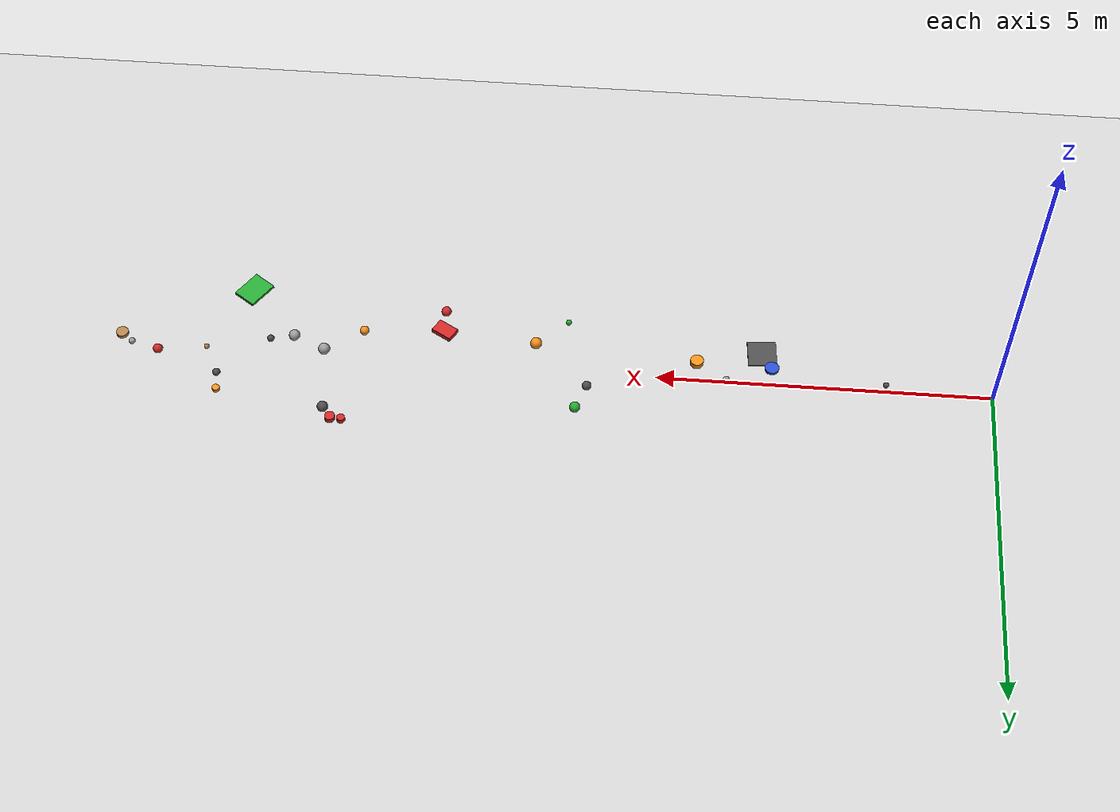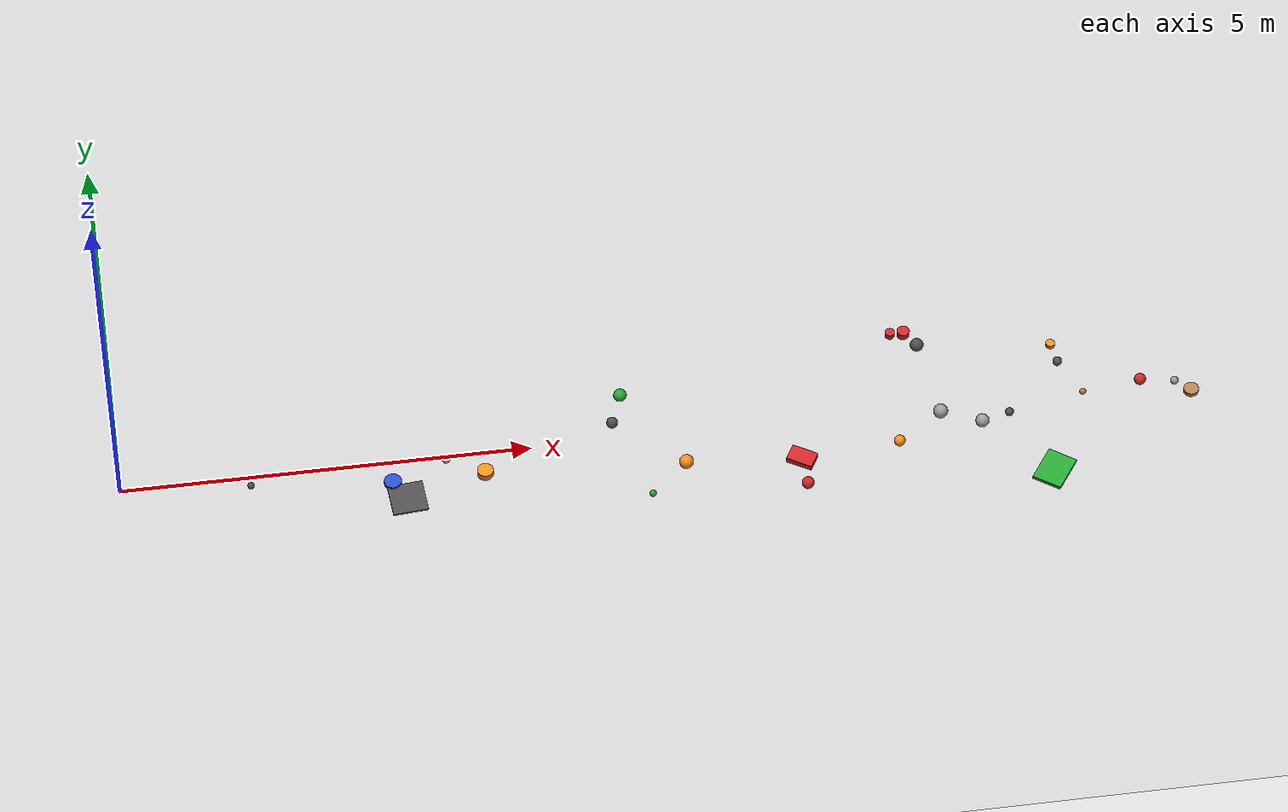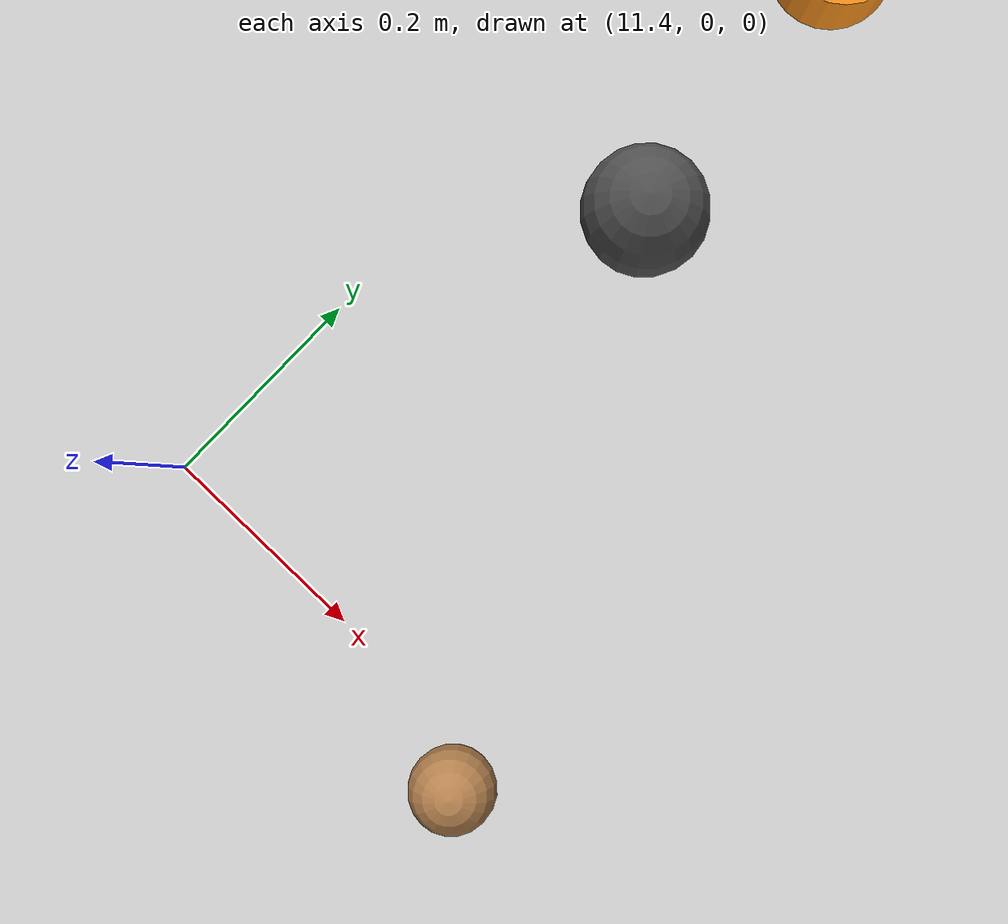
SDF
<?xml version="1.0" ?>
<!-- 由 omni_world.py 自动生成: scene=random seed=6 -->
<sdf version="1.5">
  <world name="random">
    <physics type="ode">
      <type>world</type>
      <max_step_size>0.001</max_step_size>
      <real_time_update_rate>1000</real_time_update_rate>
      <iters>500</iters>
    </physics>
    <include><uri>model://sun</uri></include>
    <include><uri>model://ground_plane</uri></include>
    <model name="r_sph_0">
      <static>true</static>
      <pose>11.774 -0.036 0.019 0 0 0</pose>
      <link name="link">
        <collision name="collision">
          <geometry><sphere><radius>0.040</radius></sphere></geometry>
          <surface><friction><ode><mu>1.0</mu><mu2>1.0</mu2></ode></friction></surface>
        </collision>
        <visual name="visual">
          <geometry><sphere><radius>0.040</radius></sphere></geometry>
          <material><script><uri>file://media/materials/scripts/gazebo.material</uri>
            <name>Gazebo/Wood</name></script></material>
        </visual>
      </link>
    </model>
    <model name="r_sph_1">
      <static>true</static>
      <pose>6.165 0.648 0.020 0 0 0</pose>
      <link name="link">
        <collision name="collision">
          <geometry><sphere><radius>0.080</radius></sphere></geometry>
          <surface><friction><ode><mu>1.0</mu><mu2>1.0</mu2></ode></friction></surface>
        </collision>
        <visual name="visual">
          <geometry><sphere><radius>0.080</radius></sphere></geometry>
          <material><script><uri>file://media/materials/scripts/gazebo.material</uri>
            <name>Gazebo/Green</name></script></material>
        </visual>
      </link>
    </model>
    <model name="r_sph_2">
      <static>true</static>
      <pose>8.241 -0.974 0.030 0 0 0</pose>
      <link name="link">
        <collision name="collision">
          <geometry><sphere><radius>0.075</radius></sphere></geometry>
          <surface><friction><ode><mu>1.0</mu><mu2>1.0</mu2></ode></friction></surface>
        </collision>
        <visual name="visual">
          <geometry><sphere><radius>0.075</radius></sphere></geometry>
          <material><script><uri>file://media/materials/scripts/gazebo.material</uri>
            <name>Gazebo/Red</name></script></material>
        </visual>
      </link>
    </model>
    <model name="r_sph_3">
      <static>true</static>
      <pose>11.542 0.446 0.040 0 0 0</pose>
      <link name="link">
        <collision name="collision">
          <geometry><sphere><radius>0.057</radius></sphere></geometry>
          <surface><friction><ode><mu>1.0</mu><mu2>1.0</mu2></ode></friction></surface>
        </collision>
        <visual name="visual">
          <geometry><sphere><radius>0.057</radius></sphere></geometry>
          <material><script><uri>file://media/materials/scripts/gazebo.material</uri>
            <name>Gazebo/DarkGrey</name></script></material>
        </visual>
      </link>
    </model>
    <model name="r_cyl_4">
      <static>true</static>
      <pose>11.504 0.731 0.026 0 0 0</pose>
      <link name="link">
        <collision name="collision">
          <geometry><cylinder><radius>0.057</radius><length>0.051</length></cylinder></geometry>
          <surface><friction><ode><mu>1.0</mu><mu2>1.0</mu2></ode></friction></surface>
        </collision>
        <visual name="visual">
          <geometry><cylinder><radius>0.057</radius><length>0.051</length></cylinder></geometry>
          <material><script><uri>file://media/materials/scripts/gazebo.material</uri>
            <name>Gazebo/Orange</name></script></material>
        </visual>
      </link>
    </model>
    <model name="r_sph_5">
      <static>true</static>
      <pose>9.436 -0.501 0.043 0 0 0</pose>
      <link name="link">
        <collision name="collision">
          <geometry><sphere><radius>0.069</radius></sphere></geometry>
          <surface><friction><ode><mu>1.0</mu><mu2>1.0</mu2></ode></friction></surface>
        </collision>
        <visual name="visual">
          <geometry><sphere><radius>0.069</radius></sphere></geometry>
          <material><script><uri>file://media/materials/scripts/gazebo.material</uri>
            <name>Gazebo/Orange</name></script></material>
        </visual>
      </link>
    </model>
    <model name="r_sph_6">
      <static>true</static>
      <pose>12.908 -0.032 0.039 0 0 0</pose>
      <link name="link">
        <collision name="collision">
          <geometry><sphere><radius>0.050</radius></sphere></geometry>
          <surface><friction><ode><mu>1.0</mu><mu2>1.0</mu2></ode></friction></surface>
        </collision>
        <visual name="visual">
          <geometry><sphere><radius>0.050</radius></sphere></geometry>
          <material><script><uri>file://media/materials/scripts/gazebo.material</uri>
            <name>Gazebo/Grey</name></script></material>
        </visual>
      </link>
    </model>
    <model name="r_sph_7">
      <static>true</static>
      <pose>6.017 0.244 0.021 0 0 0</pose>
      <link name="link">
        <collision name="collision">
          <geometry><sphere><radius>0.069</radius></sphere></geometry>
          <surface><friction><ode><mu>1.0</mu><mu2>1.0</mu2></ode></friction></surface>
        </collision>
        <visual name="visual">
          <geometry><sphere><radius>0.069</radius></sphere></geometry>
          <material><script><uri>file://media/materials/scripts/gazebo.material</uri>
            <name>Gazebo/DarkGrey</name></script></material>
        </visual>
      </link>
    </model>
    <model name="r_sph_8">
      <static>true</static>
      <pose>12.501 0.061 0.014 0 0 0</pose>
      <link name="link">
        <collision name="collision">
          <geometry><sphere><radius>0.073</radius></sphere></geometry>
          <surface><friction><ode><mu>1.0</mu><mu2>1.0</mu2></ode></friction></surface>
        </collision>
        <visual name="visual">
          <geometry><sphere><radius>0.073</radius></sphere></geometry>
          <material><script><uri>file://media/materials/scripts/gazebo.material</uri>
            <name>Gazebo/Red</name></script></material>
        </visual>
      </link>
    </model>
    <model name="r_sph_9">
      <static>true</static>
      <pose>3.953 -0.039 0.015 0 0 0</pose>
      <link name="link">
        <collision name="collision">
          <geometry><sphere><radius>0.050</radius></sphere></geometry>
          <surface><friction><ode><mu>1.0</mu><mu2>1.0</mu2></ode></friction></surface>
        </collision>
        <visual name="visual">
          <geometry><sphere><radius>0.050</radius></sphere></geometry>
          <material><script><uri>file://media/materials/scripts/gazebo.material</uri>
            <name>Gazebo/Grey</name></script></material>
        </visual>
      </link>
    </model>
    <model name="r_box_10">
      <static>true</static>
      <pose>11.226 -1.159 0.022 0.0000 0.0000 0.9617</pose>
      <link name="link">
        <collision name="collision">
          <geometry><box><size>0.467 0.367 0.043</size></box></geometry>
          <surface><friction><ode><mu>1.0</mu><mu2>1.0</mu2></ode></friction></surface>
        </collision>
        <visual name="visual">
          <geometry><box><size>0.467 0.367 0.043</size></box></geometry>
          <material><script><uri>file://media/materials/scripts/gazebo.material</uri>
            <name>Gazebo/Green</name></script></material>
        </visual>
      </link>
    </model>
    <model name="r_sph_11">
      <static>true</static>
      <pose>6.365 -0.896 0.045 0 0 0</pose>
      <link name="link">
        <collision name="collision">
          <geometry><sphere><radius>0.043</radius></sphere></geometry>
          <surface><friction><ode><mu>1.0</mu><mu2>1.0</mu2></ode></friction></surface>
        </collision>
        <visual name="visual">
          <geometry><sphere><radius>0.043</radius></sphere></geometry>
          <material><script><uri>file://media/materials/scripts/gazebo.material</uri>
            <name>Gazebo/Green</name></script></material>
        </visual>
      </link>
    </model>
    <model name="r_sph_12">
      <static>true</static>
      <pose>10.829 -0.245 0.044 0 0 0</pose>
      <link name="link">
        <collision name="collision">
          <geometry><sphere><radius>0.052</radius></sphere></geometry>
          <surface><friction><ode><mu>1.0</mu><mu2>1.0</mu2></ode></friction></surface>
        </collision>
        <visual name="visual">
          <geometry><sphere><radius>0.052</radius></sphere></geometry>
          <material><script><uri>file://media/materials/scripts/gazebo.material</uri>
            <name>Gazebo/DarkGrey</name></script></material>
        </visual>
      </link>
    </model>
    <model name="r_sph_13">
      <static>true</static>
      <pose>9.878 0.935 0.026 0 0 0</pose>
      <link name="link">
        <collision name="collision">
          <geometry><sphere><radius>0.082</radius></sphere></geometry>
          <surface><friction><ode><mu>1.0</mu><mu2>1.0</mu2></ode></friction></surface>
        </collision>
        <visual name="visual">
          <geometry><sphere><radius>0.082</radius></sphere></geometry>
          <material><script><uri>file://media/materials/scripts/gazebo.material</uri>
            <name>Gazebo/DarkGrey</name></script></material>
        </visual>
      </link>
    </model>
    <model name="r_sph_14">
      <static>true</static>
      <pose>6.830 -0.472 0.039 0 0 0</pose>
      <link name="link">
        <collision name="collision">
          <geometry><sphere><radius>0.087</radius></sphere></geometry>
          <surface><friction><ode><mu>1.0</mu><mu2>1.0</mu2></ode></friction></surface>
        </collision>
        <visual name="visual">
          <geometry><sphere><radius>0.087</radius></sphere></geometry>
          <material><script><uri>file://media/materials/scripts/gazebo.material</uri>
            <name>Gazebo/Orange</name></script></material>
        </visual>
      </link>
    </model>
    <model name="r_sph_15">
      <static>true</static>
      <pose>10.002 -0.117 0.035 0 0 0</pose>
      <link name="link">
        <collision name="collision">
          <geometry><sphere><radius>0.088</radius></sphere></geometry>
          <surface><friction><ode><mu>1.0</mu><mu2>1.0</mu2></ode></friction></surface>
        </collision>
        <visual name="visual">
          <geometry><sphere><radius>0.088</radius></sphere></geometry>
          <material><script><uri>file://media/materials/scripts/gazebo.material</uri>
            <name>Gazebo/Grey</name></script></material>
        </visual>
      </link>
    </model>
    <model name="r_box_16">
      <static>true</static>
      <pose>8.224 -0.597 0.038 0.0000 0.0000 1.0350</pose>
      <link name="link">
        <collision name="collision">
          <geometry><box><size>0.216 0.326 0.076</size></box></geometry>
          <surface><friction><ode><mu>1.0</mu><mu2>1.0</mu2></ode></friction></surface>
        </collision>
        <visual name="visual">
          <geometry><box><size>0.216 0.326 0.076</size></box></geometry>
          <material><script><uri>file://media/materials/scripts/gazebo.material</uri>
            <name>Gazebo/Red</name></script></material>
        </visual>
      </link>
    </model>
    <model name="r_cyl_17">
      <static>true</static>
      <pose>13.087 -0.188 0.027 0 0 0</pose>
      <link name="link">
        <collision name="collision">
          <geometry><cylinder><radius>0.092</radius><length>0.054</length></cylinder></geometry>
          <surface><friction><ode><mu>1.0</mu><mu2>1.0</mu2></ode></friction></surface>
        </collision>
        <visual name="visual">
          <geometry><cylinder><radius>0.092</radius><length>0.054</length></cylinder></geometry>
          <material><script><uri>file://media/materials/scripts/gazebo.material</uri>
            <name>Gazebo/Wood</name></script></material>
        </visual>
      </link>
    </model>
    <model name="r_cyl_18">
      <static>true</static>
      <pose>3.277 -0.294 0.021 0 0 0</pose>
      <link name="link">
        <collision name="collision">
          <geometry><cylinder><radius>0.106</radius><length>0.041</length></cylinder></geometry>
          <surface><friction><ode><mu>1.0</mu><mu2>1.0</mu2></ode></friction></surface>
        </collision>
        <visual name="visual">
          <geometry><cylinder><radius>0.106</radius><length>0.041</length></cylinder></geometry>
          <material><script><uri>file://media/materials/scripts/gazebo.material</uri>
            <name>Gazebo/Blue</name></script></material>
        </visual>
      </link>
    </model>
    <model name="r_cyl_19">
      <static>true</static>
      <pose>9.741 1.130 0.042 0 0 0</pose>
      <link name="link">
        <collision name="collision">
          <geometry><cylinder><radius>0.076</radius><length>0.085</length></cylinder></geometry>
          <surface><friction><ode><mu>1.0</mu><mu2>1.0</mu2></ode></friction></surface>
        </collision>
        <visual name="visual">
          <geometry><cylinder><radius>0.076</radius><length>0.085</length></cylinder></geometry>
          <material><script><uri>file://media/materials/scripts/gazebo.material</uri>
            <name>Gazebo/Red</name></script></material>
        </visual>
      </link>
    </model>
    <model name="r_cyl_20">
      <static>true</static>
      <pose>9.576 1.140 0.036 0 0 0</pose>
      <link name="link">
        <collision name="collision">
          <geometry><cylinder><radius>0.061</radius><length>0.071</length></cylinder></geometry>
          <surface><friction><ode><mu>1.0</mu><mu2>1.0</mu2></ode></friction></surface>
        </collision>
        <visual name="visual">
          <geometry><cylinder><radius>0.061</radius><length>0.071</length></cylinder></geometry>
          <material><script><uri>file://media/materials/scripts/gazebo.material</uri>
            <name>Gazebo/Red</name></script></material>
        </visual>
      </link>
    </model>
    <model name="r_sph_21">
      <static>true</static>
      <pose>1.577 -0.122 0.012 0 0 0</pose>
      <link name="link">
        <collision name="collision">
          <geometry><sphere><radius>0.042</radius></sphere></geometry>
          <surface><friction><ode><mu>1.0</mu><mu2>1.0</mu2></ode></friction></surface>
        </collision>
        <visual name="visual">
          <geometry><sphere><radius>0.042</radius></sphere></geometry>
          <material><script><uri>file://media/materials/scripts/gazebo.material</uri>
            <name>Gazebo/DarkGrey</name></script></material>
        </visual>
      </link>
    </model>
    <model name="r_sph_22">
      <static>true</static>
      <pose>10.481 -0.331 0.043 0 0 0</pose>
      <link name="link">
        <collision name="collision">
          <geometry><sphere><radius>0.083</radius></sphere></geometry>
          <surface><friction><ode><mu>1.0</mu><mu2>1.0</mu2></ode></friction></surface>
        </collision>
        <visual name="visual">
          <geometry><sphere><radius>0.083</radius></sphere></geometry>
          <material><script><uri>file://media/materials/scripts/gazebo.material</uri>
            <name>Gazebo/Grey</name></script></material>
        </visual>
      </link>
    </model>
    <model name="r_box_23">
      <static>true</static>
      <pose>3.430 -0.554 0.011 0.0000 0.0000 1.6489</pose>
      <link name="link">
        <collision name="collision">
          <geometry><box><size>0.432 0.430 0.021</size></box></geometry>
          <surface><friction><ode><mu>1.0</mu><mu2>1.0</mu2></ode></friction></surface>
        </collision>
        <visual name="visual">
          <geometry><box><size>0.432 0.430 0.021</size></box></geometry>
          <material><script><uri>file://media/materials/scripts/gazebo.material</uri>
            <name>Gazebo/DarkGrey</name></script></material>
        </visual>
      </link>
    </model>
    <model name="r_cyl_24">
      <static>true</static>
      <pose>4.401 -0.310 0.044 0 0 0</pose>
      <link name="link">
        <collision name="collision">
          <geometry><cylinder><radius>0.098</radius><length>0.087</length></cylinder></geometry>
          <surface><friction><ode><mu>1.0</mu><mu2>1.0</mu2></ode></friction></surface>
        </collision>
        <visual name="visual">
          <geometry><cylinder><radius>0.098</radius><length>0.087</length></cylinder></geometry>
          <material><script><uri>file://media/materials/scripts/gazebo.material</uri>
            <name>Gazebo/Orange</name></script></material>
        </visual>
      </link>
    </model>

  </world>
</sdf>
